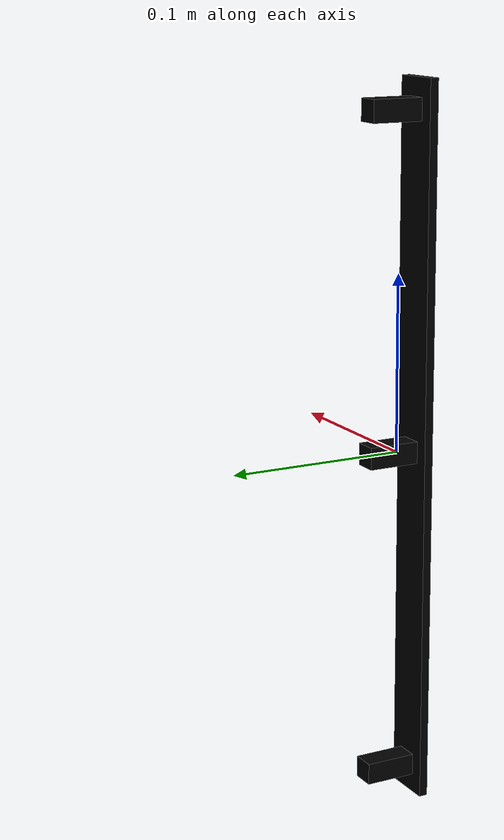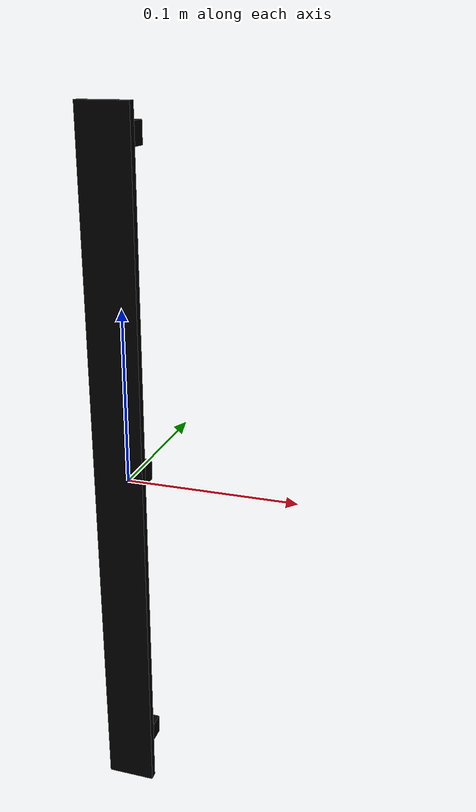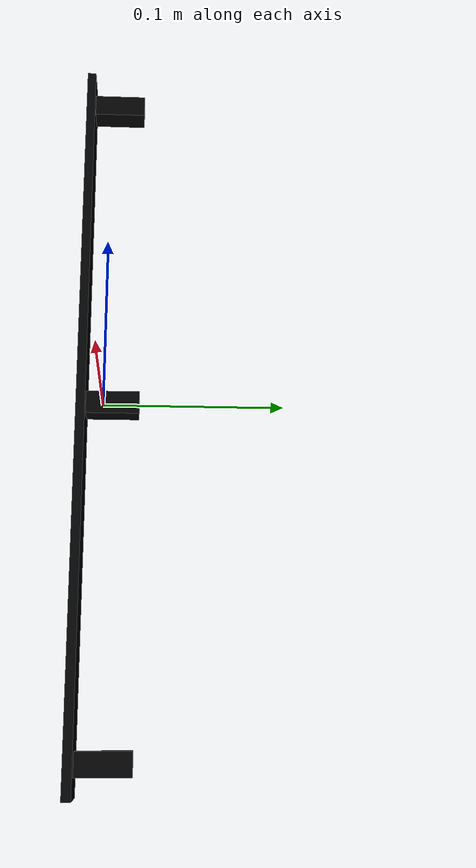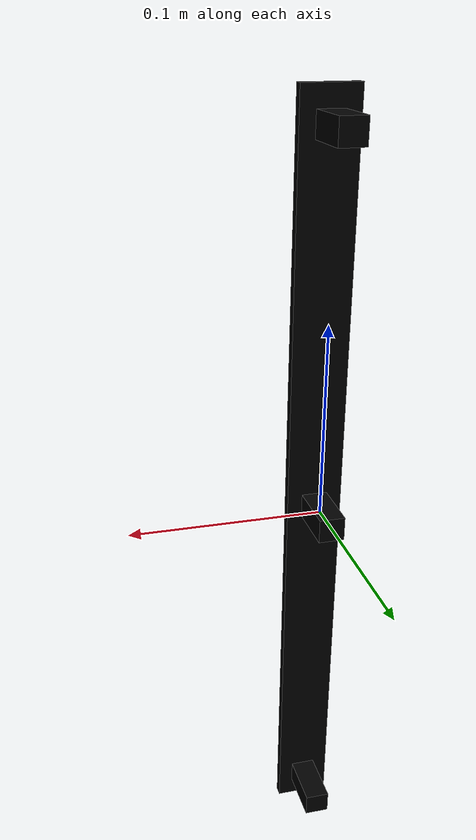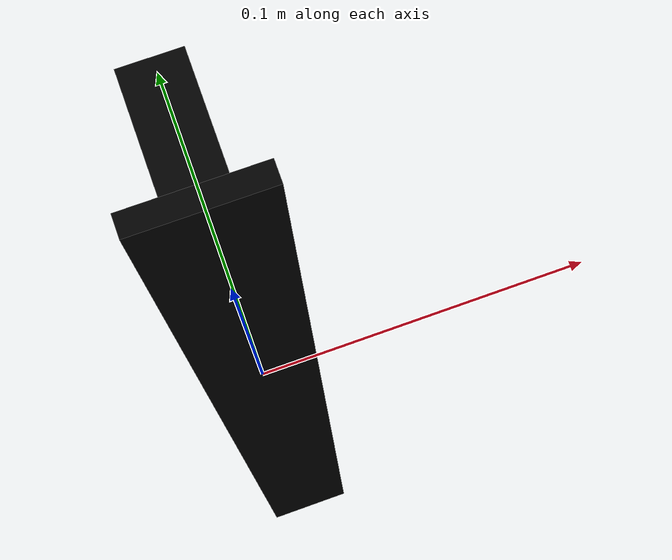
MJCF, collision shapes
<?xml version="1.0" ?>
<mujoco model="model">
    <compiler angle="radian"/>
    <asset>
        <mesh file="visuals/CabinetHandle021.obj" name="mesh"/>
        <texture file="visuals/T_BC001.png" name="tex" type="2d"/>
        <material name="mat" rgba="1 1 1 1.0" texture="tex" shininess="0.4472135901451111" specular="1"/>
    </asset>
    <default>
        <default class="visual">
            <geom conaffinity="0" contype="0" group="1" type="mesh"/>
        </default>
        <default class="collision">
            <geom group="0" rgba="0 0 0 0"/>
        </default>
        <default class="spawn">
            <geom group="0" rgba="0 0 0 0" contype="0" conaffinity="0"/>
            <site group="0" rgba="0 0 0 0"/>
        </default>
    </default>
    <worldbody>
        <body>
            <body name="object">
                <geom mesh="mesh" type="mesh" solimp="0.998 0.998 0.001" solref="0.001 1" density="100" friction="0.95 0.3 0.1" class="visual" material="mat"/>
                <geom class="collision" type="box" pos="2.1228814262030937e-09 -0.011946987360715866 0.0" size="0.014573062770068645 0.0024639107286930084 0.20434318482875824" quat="1.0 0.0 0.0 0.0"/>
                <geom class="collision" type="box" pos="0.00016692587814759463 0.005144401919096708 5.9201378462603316e-05" size="0.0066745225340127945 0.014658631756901741 0.006232067942619324" quat="1.0 0.0 0.0 0.0"/>
                <geom class="collision" type="box" pos="0.00016692587814759463 0.005144402384757996 -0.1873619705438614" size="0.006626402493566275 0.014658619649708271 0.006187136285007" quat="1.0 0.0 0.0 0.0" name="handle_connector"/>
                <geom class="collision" type="box" pos="0.00016692587814759463 0.005144402384757996 0.18762050569057465" size="0.006671158596873283 0.014658618718385696 0.006228928454220295" quat="1.0 0.0 0.0 0.0"/>
            </body>
        </body>
    </worldbody>
    <actuator/>
</mujoco>
